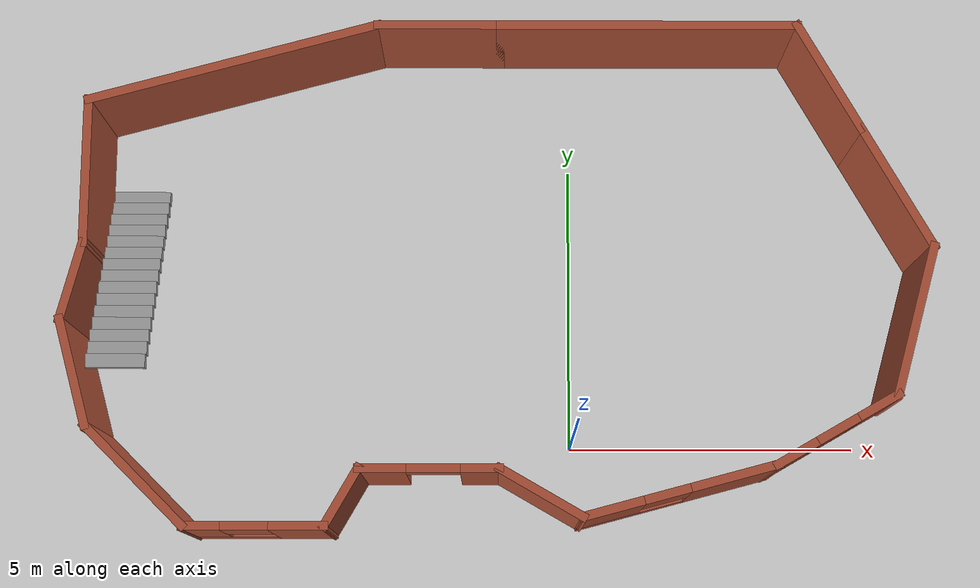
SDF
<sdf version="1.7">
 <world name="default">
  <light name="sun" type="directional">
   <pose>0 0 10 0 -0 0</pose>
   <diffuse>0.8 0.8 0.8 1</diffuse>
   <specular>0.2 0.2 0.2 1</specular>
   <attenuation>
    <range>1000</range>
    <constant>0.9</constant>
    <linear>0.01</linear>
    <quadratic>0.001</quadratic>
   </attenuation>
   <direction>-0.5 0.1 -0.9</direction>
   <spot><inner_angle>0</inner_angle><outer_angle>0</outer_angle><falloff>0</falloff></spot>
  </light>
  <model name="ground_plane">
   <static>1</static>
   <link name="link">
    <collision name="collision">
     <geometry><plane><normal>0 0 1</normal><size>100 100</size></plane></geometry>
     <surface>
      <contact><collide_bitmask>65535</collide_bitmask></contact>
      <friction><ode><mu>100</mu><mu2>50</mu2></ode></friction>
     </surface>
    </collision>
    <visual name="visual">
     <cast_shadows>0</cast_shadows>
     <geometry><plane><normal>0 0 1</normal><size>100 100</size></plane></geometry>
     <material>
      <script><uri>file://media/materials/scripts/gazebo.material</uri><name>Gazebo/Grey</name></script>
     </material>
    </visual>
   </link>
  </model>
  <gravity>0 0 -9.8</gravity>
  <magnetic_field>6e-06 2.3e-05 -4.2e-05</magnetic_field>
  <atmosphere type="adiabatic"/>
  <physics type="ode">
   <max_step_size>0.001</max_step_size>
   <real_time_factor>1</real_time_factor>
   <real_time_update_rate>1000</real_time_update_rate>
  </physics>
  <scene><ambient>0.4 0.4 0.4 1</ambient><background>0.7 0.7 0.7 1</background><shadows>1</shadows></scene>
  <spherical_coordinates>
   <surface_model>EARTH_WGS84</surface_model>
   <latitude_deg>0</latitude_deg>
   <longitude_deg>0</longitude_deg>
   <elevation>0</elevation>
   <heading_deg>0</heading_deg>
  </spherical_coordinates>
  <model name="my_building">
   <pose>-1.25788 2.77957 0 0 -0 0</pose>
   <link name="Stairs_0">
    <visual name="Stairs_0_Visual_0">
     <pose>-6.40227 1.72889 0.083333 0 -0 0</pose>
     <geometry><box><size>1 0.233333 0.166667</size></box></geometry>
     <material>
      <script><uri>file://media/materials/scripts/gazebo.material</uri><name>Gazebo/Grey</name></script>
      <ambient>1 1 1 1</ambient>
     </material>
     <meta><layer>0</layer></meta>
    </visual>
    <collision name="Stairs_0_Collision_0">
     <geometry><box><size>1 0.233333 0.166667</size></box></geometry>
     <pose>-6.40227 1.72889 0.083333 0 -0 0</pose>
    </collision>
    <visual name="Stairs_0_Visual_1">
     <pose>-6.40227 1.49556 0.25 0 -0 0</pose>
     <geometry><box><size>1 0.233333 0.166667</size></box></geometry>
     <material>
      <script><uri>file://media/materials/scripts/gazebo.material</uri><name>Gazebo/Grey</name></script>
      <ambient>1 1 1 1</ambient>
     </material>
     <meta><layer>0</layer></meta>
    </visual>
    <collision name="Stairs_0_Collision_1">
     <geometry><box><size>1 0.233333 0.166667</size></box></geometry>
     <pose>-6.40227 1.49556 0.25 0 -0 0</pose>
    </collision>
    <visual name="Stairs_0_Visual_2">
     <pose>-6.40227 1.26223 0.416667 0 -0 0</pose>
     <geometry><box><size>1 0.233333 0.166667</size></box></geometry>
     <material>
      <script><uri>file://media/materials/scripts/gazebo.material</uri><name>Gazebo/Grey</name></script>
      <ambient>1 1 1 1</ambient>
     </material>
     <meta><layer>0</layer></meta>
    </visual>
    <collision name="Stairs_0_Collision_2">
     <geometry><box><size>1 0.233333 0.166667</size></box></geometry>
     <pose>-6.40227 1.26223 0.416667 0 -0 0</pose>
    </collision>
    <visual name="Stairs_0_Visual_3">
     <pose>-6.40227 1.02889 0.583333 0 -0 0</pose>
     <geometry><box><size>1 0.233333 0.166667</size></box></geometry>
     <material>
      <script><uri>file://media/materials/scripts/gazebo.material</uri><name>Gazebo/Grey</name></script>
      <ambient>1 1 1 1</ambient>
     </material>
     <meta><layer>0</layer></meta>
    </visual>
    <collision name="Stairs_0_Collision_3">
     <geometry><box><size>1 0.233333 0.166667</size></box></geometry>
     <pose>-6.40227 1.02889 0.583333 0 -0 0</pose>
    </collision>
    <visual name="Stairs_0_Visual_4">
     <pose>-6.40227 0.79556 0.75 0 -0 0</pose>
     <geometry><box><size>1 0.233333 0.166667</size></box></geometry>
     <material>
      <script><uri>file://media/materials/scripts/gazebo.material</uri><name>Gazebo/Grey</name></script>
      <ambient>1 1 1 1</ambient>
     </material>
     <meta><layer>0</layer></meta>
    </visual>
    <collision name="Stairs_0_Collision_4">
     <geometry><box><size>1 0.233333 0.166667</size></box></geometry>
     <pose>-6.40227 0.79556 0.75 0 -0 0</pose>
    </collision>
    <visual name="Stairs_0_Visual_5">
     <pose>-6.40227 0.562227 0.916667 0 -0 0</pose>
     <geometry><box><size>1 0.233333 0.166667</size></box></geometry>
     <material>
      <script><uri>file://media/materials/scripts/gazebo.material</uri><name>Gazebo/Grey</name></script>
      <ambient>1 1 1 1</ambient>
     </material>
     <meta><layer>0</layer></meta>
    </visual>
    <collision name="Stairs_0_Collision_5">
     <geometry><box><size>1 0.233333 0.166667</size></box></geometry>
     <pose>-6.40227 0.562227 0.916667 0 -0 0</pose>
    </collision>
    <visual name="Stairs_0_Visual_6">
     <pose>-6.40227 0.328894 1.08333 0 -0 0</pose>
     <geometry><box><size>1 0.233333 0.166667</size></box></geometry>
     <material>
      <script><uri>file://media/materials/scripts/gazebo.material</uri><name>Gazebo/Grey</name></script>
      <ambient>1 1 1 1</ambient>
     </material>
     <meta><layer>0</layer></meta>
    </visual>
    <collision name="Stairs_0_Collision_6">
     <geometry><box><size>1 0.233333 0.166667</size></box></geometry>
     <pose>-6.40227 0.328894 1.08333 0 -0 0</pose>
    </collision>
    <visual name="Stairs_0_Visual_7">
     <pose>-6.40227 0.09556 1.25 0 -0 0</pose>
     <geometry><box><size>1 0.233333 0.166667</size></box></geometry>
     <material>
      <script><uri>file://media/materials/scripts/gazebo.material</uri><name>Gazebo/Grey</name></script>
      <ambient>1 1 1 1</ambient>
     </material>
     <meta><layer>0</layer></meta>
    </visual>
    <collision name="Stairs_0_Collision_7">
     <geometry><box><size>1 0.233333 0.166667</size></box></geometry>
     <pose>-6.40227 0.09556 1.25 0 -0 0</pose>
    </collision>
    <visual name="Stairs_0_Visual_8">
     <pose>-6.40227 -0.137773 1.41667 0 -0 0</pose>
     <geometry><box><size>1 0.233333 0.166667</size></box></geometry>
     <material>
      <script><uri>file://media/materials/scripts/gazebo.material</uri><name>Gazebo/Grey</name></script>
      <ambient>1 1 1 1</ambient>
     </material>
     <meta><layer>0</layer></meta>
    </visual>
    <collision name="Stairs_0_Collision_8">
     <geometry><box><size>1 0.233333 0.166667</size></box></geometry>
     <pose>-6.40227 -0.137773 1.41667 0 -0 0</pose>
    </collision>
    <visual name="Stairs_0_Visual_9">
     <pose>-6.40227 -0.371106 1.58333 0 -0 0</pose>
     <geometry><box><size>1 0.233333 0.166667</size></box></geometry>
     <material>
      <script><uri>file://media/materials/scripts/gazebo.material</uri><name>Gazebo/Grey</name></script>
      <ambient>1 1 1 1</ambient>
     </material>
     <meta><layer>0</layer></meta>
    </visual>
    <collision name="Stairs_0_Collision_9">
     <geometry><box><size>1 0.233333 0.166667</size></box></geometry>
     <pose>-6.40227 -0.371106 1.58333 0 -0 0</pose>
    </collision>
    <visual name="Stairs_0_Visual_10">
     <pose>-6.40227 -0.60444 1.75 0 -0 0</pose>
     <geometry><box><size>1 0.233333 0.166667</size></box></geometry>
     <material>
      <script><uri>file://media/materials/scripts/gazebo.material</uri><name>Gazebo/Grey</name></script>
      <ambient>1 1 1 1</ambient>
     </material>
     <meta><layer>0</layer></meta>
    </visual>
    <collision name="Stairs_0_Collision_10">
     <geometry><box><size>1 0.233333 0.166667</size></box></geometry>
     <pose>-6.40227 -0.60444 1.75 0 -0 0</pose>
    </collision>
    <visual name="Stairs_0_Visual_11">
     <pose>-6.40227 -0.837773 1.91667 0 -0 0</pose>
     <geometry><box><size>1 0.233333 0.166667</size></box></geometry>
     <material>
      <script><uri>file://media/materials/scripts/gazebo.material</uri><name>Gazebo/Grey</name></script>
      <ambient>1 1 1 1</ambient>
     </material>
     <meta><layer>0</layer></meta>
    </visual>
    <collision name="Stairs_0_Collision_11">
     <geometry><box><size>1 0.233333 0.166667</size></box></geometry>
     <pose>-6.40227 -0.837773 1.91667 0 -0 0</pose>
    </collision>
    <visual name="Stairs_0_Visual_12">
     <pose>-6.40227 -1.07111 2.08333 0 -0 0</pose>
     <geometry><box><size>1 0.233333 0.166667</size></box></geometry>
     <material>
      <script><uri>file://media/materials/scripts/gazebo.material</uri><name>Gazebo/Grey</name></script>
      <ambient>1 1 1 1</ambient>
     </material>
     <meta><layer>0</layer></meta>
    </visual>
    <collision name="Stairs_0_Collision_12">
     <geometry><box><size>1 0.233333 0.166667</size></box></geometry>
     <pose>-6.40227 -1.07111 2.08333 0 -0 0</pose>
    </collision>
    <visual name="Stairs_0_Visual_13">
     <pose>-6.40227 -1.30444 2.25 0 -0 0</pose>
     <geometry><box><size>1 0.233333 0.166667</size></box></geometry>
     <material>
      <script><uri>file://media/materials/scripts/gazebo.material</uri><name>Gazebo/Grey</name></script>
      <ambient>1 1 1 1</ambient>
     </material>
     <meta><layer>0</layer></meta>
    </visual>
    <collision name="Stairs_0_Collision_13">
     <geometry><box><size>1 0.233333 0.166667</size></box></geometry>
     <pose>-6.40227 -1.30444 2.25 0 -0 0</pose>
    </collision>
    <visual name="Stairs_0_Visual_14">
     <pose>-6.40227 -1.53777 2.41667 0 -0 0</pose>
     <geometry><box><size>1 0.233333 0.166667</size></box></geometry>
     <material>
      <script><uri>file://media/materials/scripts/gazebo.material</uri><name>Gazebo/Grey</name></script>
      <ambient>1 1 1 1</ambient>
     </material>
     <meta><layer>0</layer></meta>
    </visual>
    <collision name="Stairs_0_Collision_14">
     <geometry><box><size>1 0.233333 0.166667</size></box></geometry>
     <pose>-6.40227 -1.53777 2.41667 0 -0 0</pose>
    </collision>
   </link>
   <link name="Wall_20">
    <collision name="Wall_20_Collision">
     <geometry><box><size>5.25 0.15 2.5</size></box></geometry>
     <pose>0 0 1.25 0 -0 0</pose>
    </collision>
    <visual name="Wall_20_Visual">
     <pose>0 0 1.25 0 -0 0</pose>
     <geometry><box><size>5.25 0.15 2.5</size></box></geometry>
     <material>
      <script><uri>file://media/materials/scripts/gazebo.material</uri><name>Gazebo/Bricks</name></script>
      <ambient>1 1 1 1</ambient>
     </material>
     <meta><layer>0</layer></meta>
    </visual>
    <pose>-4.53336 3.62176 0 0 -0 0.261799</pose>
   </link>
   <link name="Wall_21">
    <collision name="Wall_21_Collision">
     <geometry><box><size>2.25 0.15 2.5</size></box></geometry>
     <pose>0 0 1.25 0 -0 0</pose>
    </collision>
    <visual name="Wall_21_Visual">
     <pose>0 0 1.25 0 -0 0</pose>
     <geometry><box><size>2.25 0.15 2.5</size></box></geometry>
     <material>
      <script><uri>file://media/materials/scripts/gazebo.material</uri><name>Gazebo/Bricks</name></script>
      <ambient>1 1 1 1</ambient>
     </material>
     <meta><layer>0</layer></meta>
    </visual>
    <pose>-1.02025 4.28175 0 0 -0 0</pose>
   </link>
   <link name="Wall_22">
    <collision name="Wall_22_Collision">
     <geometry><box><size>5.25 0.15 2.5</size></box></geometry>
     <pose>0 0 1.25 0 -0 0</pose>
    </collision>
    <visual name="Wall_22_Visual">
     <pose>0 0 1.25 0 -0 0</pose>
     <geometry><box><size>5.25 0.15 2.5</size></box></geometry>
     <material>
      <script><uri>file://media/materials/scripts/gazebo.material</uri><name>Gazebo/Bricks</name></script>
      <ambient>1 1 1 1</ambient>
     </material>
     <meta><layer>0</layer></meta>
    </visual>
    <pose>2.57975 4.28175 0 0 -0 0</pose>
   </link>
   <link name="Wall_23">
    <collision name="Wall_23_Collision">
     <geometry><box><size>2.25 0.15 2.5</size></box></geometry>
     <pose>0 0 1.25 0 -0 0</pose>
    </collision>
    <visual name="Wall_23_Visual">
     <pose>0 0 1.25 0 -0 0</pose>
     <geometry><box><size>2.25 0.15 2.5</size></box></geometry>
     <material>
      <script><uri>file://media/materials/scripts/gazebo.material</uri><name>Gazebo/Bricks</name></script>
      <ambient>1 1 1 1</ambient>
     </material>
     <meta><layer>0</layer></meta>
    </visual>
    <pose>5.65475 3.37243 0 0 -0 -1.0472</pose>
   </link>
   <link name="Wall_24">
    <collision name="Wall_24_Collision">
     <geometry><box><size>2.5 0.15 2.5</size></box></geometry>
     <pose>0 0 1.25 0 -0 0</pose>
    </collision>
    <visual name="Wall_24_Visual">
     <pose>0 0 1.25 0 -0 0</pose>
     <geometry><box><size>2.5 0.15 2.5</size></box></geometry>
     <material>
      <script><uri>file://media/materials/scripts/gazebo.material</uri><name>Gazebo/Bricks</name></script>
      <ambient>1 1 1 1</ambient>
     </material>
     <meta><layer>0</layer></meta>
    </visual>
    <pose>6.76725 1.44552 0 0 -0 -1.0472</pose>
   </link>
   <link name="Wall_25">
    <collision name="Wall_25_Collision">
     <geometry><box><size>2.75 0.15 2.5</size></box></geometry>
     <pose>0 0 1.25 0 -0 0</pose>
    </collision>
    <visual name="Wall_25_Visual">
     <pose>0 0 1.25 0 -0 0</pose>
     <geometry><box><size>2.75 0.15 2.5</size></box></geometry>
     <material>
      <script><uri>file://media/materials/scripts/gazebo.material</uri><name>Gazebo/Bricks</name></script>
      <ambient>1 1 1 1</ambient>
     </material>
     <meta><layer>0</layer></meta>
    </visual>
    <pose>7.01829 -0.827763 0 0 -0 -1.8326</pose>
   </link>
   <link name="Wall_26">
    <pose>5.66424 -2.67097 0 0 -0 -2.61799</pose>
    <visual name="Wall_26_Visual_0">
     <pose>-0.825856 0 1.25 0 -0 0</pose>
     <geometry><box><size>0.848288 0.15 2.5</size></box></geometry>
     <material>
      <script><uri>file://media/materials/scripts/gazebo.material</uri><name>Gazebo/Bricks</name></script>
      <ambient>1 1 1 1</ambient>
     </material>
     <meta><layer>0</layer></meta>
    </visual>
    <collision name="Wall_26_Collision_0">
     <geometry><box><size>0.848288 0.15 2.5</size></box></geometry>
     <pose>-0.825856 0 1.25 0 -0 0</pose>
    </collision>
    <visual name="Wall_26_Visual_1">
     <pose>0.424144 0 0.25 0 -0 0</pose>
     <geometry><box><size>1.65171 0.15 0.5</size></box></geometry>
     <material>
      <script><uri>file://media/materials/scripts/gazebo.material</uri><name>Gazebo/Bricks</name></script>
      <ambient>1 1 1 1</ambient>
     </material>
     <meta><layer>0</layer></meta>
    </visual>
    <collision name="Wall_26_Collision_1">
     <geometry><box><size>1.65171 0.15 0.5</size></box></geometry>
     <pose>0.424144 0 0.25 0 -0 0</pose>
    </collision>
    <visual name="Wall_26_Visual_2">
     <pose>0.824144 0 1.5 0 -0 0</pose>
     <geometry><box><size>0.851712 0.15 2</size></box></geometry>
     <material>
      <script><uri>file://media/materials/scripts/gazebo.material</uri><name>Gazebo/Bricks</name></script>
      <ambient>1 1 1 1</ambient>
     </material>
     <meta><layer>0</layer></meta>
    </visual>
    <collision name="Wall_26_Collision_2">
     <geometry><box><size>0.851712 0.15 2</size></box></geometry>
     <pose>0.824144 0 1.5 0 -0 0</pose>
    </collision>
    <visual name="Wall_26_Visual_3">
     <pose>-0.001712 0 1.9 0 -0 0</pose>
     <geometry><box><size>0.8 0.15 1.2</size></box></geometry>
     <material>
      <script><uri>file://media/materials/scripts/gazebo.material</uri><name>Gazebo/Bricks</name></script>
      <ambient>1 1 1 1</ambient>
     </material>
     <meta><layer>0</layer></meta>
    </visual>
    <collision name="Wall_26_Collision_3">
     <geometry><box><size>0.8 0.15 1.2</size></box></geometry>
     <pose>-0.001712 0 1.9 0 -0 0</pose>
    </collision>
   </link>
   <link name="Wall_27">
    <pose>3.02874 -3.69199 0 0 -0 -2.87979</pose>
    <visual name="Wall_27_Visual_0">
     <pose>-0.964565 0 1.25 0 -0 0</pose>
     <geometry><box><size>1.57087 0.15 2.5</size></box></geometry>
     <material>
      <script><uri>file://media/materials/scripts/gazebo.material</uri><name>Gazebo/Bricks</name></script>
      <ambient>1 1 1 1</ambient>
     </material>
     <meta><layer>0</layer></meta>
    </visual>
    <collision name="Wall_27_Collision_0">
     <geometry><box><size>1.57087 0.15 2.5</size></box></geometry>
     <pose>-0.964565 0 1.25 0 -0 0</pose>
    </collision>
    <visual name="Wall_27_Visual_1">
     <pose>0.785435 0 0.25 0 -0 0</pose>
     <geometry><box><size>1.92913 0.15 0.5</size></box></geometry>
     <material>
      <script><uri>file://media/materials/scripts/gazebo.material</uri><name>Gazebo/Bricks</name></script>
      <ambient>1 1 1 1</ambient>
     </material>
     <meta><layer>0</layer></meta>
    </visual>
    <collision name="Wall_27_Collision_1">
     <geometry><box><size>1.92913 0.15 0.5</size></box></geometry>
     <pose>0.785435 0 0.25 0 -0 0</pose>
    </collision>
    <visual name="Wall_27_Visual_2">
     <pose>1.18544 0 1.5 0 -0 0</pose>
     <geometry><box><size>1.12913 0.15 2</size></box></geometry>
     <material>
      <script><uri>file://media/materials/scripts/gazebo.material</uri><name>Gazebo/Bricks</name></script>
      <ambient>1 1 1 1</ambient>
     </material>
     <meta><layer>0</layer></meta>
    </visual>
    <collision name="Wall_27_Collision_2">
     <geometry><box><size>1.12913 0.15 2</size></box></geometry>
     <pose>1.18544 0 1.5 0 -0 0</pose>
    </collision>
    <visual name="Wall_27_Visual_3">
     <pose>0.22087 0 1.9 0 -0 0</pose>
     <geometry><box><size>0.8 0.15 1.2</size></box></geometry>
     <material>
      <script><uri>file://media/materials/scripts/gazebo.material</uri><name>Gazebo/Bricks</name></script>
      <ambient>1 1 1 1</ambient>
     </material>
     <meta><layer>0</layer></meta>
    </visual>
    <collision name="Wall_27_Collision_3">
     <geometry><box><size>0.8 0.15 1.2</size></box></geometry>
     <pose>0.22087 0 1.9 0 -0 0</pose>
    </collision>
   </link>
   <link name="Wall_28">
    <collision name="Wall_28_Collision">
     <geometry><box><size>1.75 0.15 2.5</size></box></geometry>
     <pose>0 0 1.25 0 -0 0</pose>
    </collision>
    <visual name="Wall_28_Visual">
     <pose>0 0 1.25 0 -0 0</pose>
     <geometry><box><size>1.75 0.15 2.5</size></box></geometry>
     <material>
      <script><uri>file://media/materials/scripts/gazebo.material</uri><name>Gazebo/Bricks</name></script>
      <ambient>1 1 1 1</ambient>
     </material>
     <meta><layer>0</layer></meta>
    </visual>
    <pose>0.71799 -3.72551 0 0 -0 2.61799</pose>
   </link>
   <link name="Wall_29">
    <pose>-1.14983 -3.32551 0 0 -0 3.14159</pose>
    <visual name="Wall_29_Visual_0">
     <pose>-0.885131 0 1.25 0 -0 0</pose>
     <geometry><box><size>0.729739 0.15 2.5</size></box></geometry>
     <material>
      <script><uri>file://media/materials/scripts/gazebo.material</uri><name>Gazebo/Bricks</name></script>
      <ambient>1 1 1 1</ambient>
     </material>
     <meta><layer>0</layer></meta>
    </visual>
    <collision name="Wall_29_Collision_0">
     <geometry><box><size>0.729739 0.15 2.5</size></box></geometry>
     <pose>-0.885131 0 1.25 0 -0 0</pose>
    </collision>
    <visual name="Wall_29_Visual_1">
     <pose>0.814869 0 1.25 0 -0 0</pose>
     <geometry><box><size>0.870261 0.15 2.5</size></box></geometry>
     <material>
      <script><uri>file://media/materials/scripts/gazebo.material</uri><name>Gazebo/Bricks</name></script>
      <ambient>1 1 1 1</ambient>
     </material>
     <meta><layer>0</layer></meta>
    </visual>
    <collision name="Wall_29_Collision_1">
     <geometry><box><size>0.870261 0.15 2.5</size></box></geometry>
     <pose>0.814869 0 1.25 0 -0 0</pose>
    </collision>
    <visual name="Wall_29_Visual_2">
     <pose>-0.070261 0 2.25 0 -0 0</pose>
     <geometry><box><size>0.9 0.15 0.5</size></box></geometry>
     <material>
      <script><uri>file://media/materials/scripts/gazebo.material</uri><name>Gazebo/Bricks</name></script>
      <ambient>1 1 1 1</ambient>
     </material>
     <meta><layer>0</layer></meta>
    </visual>
    <collision name="Wall_29_Collision_2">
     <geometry><box><size>0.9 0.15 0.5</size></box></geometry>
     <pose>-0.070261 0 2.25 0 -0 0</pose>
    </collision>
   </link>
   <link name="Wall_30">
    <collision name="Wall_30_Collision">
     <geometry><box><size>1.25 0.15 2.5</size></box></geometry>
     <pose>0 0 1.25 0 -0 0</pose>
    </collision>
    <visual name="Wall_30_Visual">
     <pose>0 0 1.25 0 -0 0</pose>
     <geometry><box><size>1.25 0.15 2.5</size></box></geometry>
     <material>
      <script><uri>file://media/materials/scripts/gazebo.material</uri><name>Gazebo/Bricks</name></script>
      <ambient>1 1 1 1</ambient>
     </material>
     <meta><layer>0</layer></meta>
    </visual>
    <pose>-2.59983 -3.80183 0 0 -0 -2.0944</pose>
   </link>
   <link name="Wall_31">
    <pose>-4.04983 -4.27814 0 0 -0 3.14159</pose>
    <visual name="Wall_31_Visual_0">
     <pose>-0.750029 0 1.25 0 -0 0</pose>
     <geometry><box><size>0.999942 0.15 2.5</size></box></geometry>
     <material>
      <script><uri>file://media/materials/scripts/gazebo.material</uri><name>Gazebo/Bricks</name></script>
      <ambient>1 1 1 1</ambient>
     </material>
     <meta><layer>0</layer></meta>
    </visual>
    <collision name="Wall_31_Collision_0">
     <geometry><box><size>0.999942 0.15 2.5</size></box></geometry>
     <pose>-0.750029 0 1.25 0 -0 0</pose>
    </collision>
    <visual name="Wall_31_Visual_1">
     <pose>0.499971 0 0.25 0 -0 0</pose>
     <geometry><box><size>1.50006 0.15 0.5</size></box></geometry>
     <material>
      <script><uri>file://media/materials/scripts/gazebo.material</uri><name>Gazebo/Bricks</name></script>
      <ambient>1 1 1 1</ambient>
     </material>
     <meta><layer>0</layer></meta>
    </visual>
    <collision name="Wall_31_Collision_1">
     <geometry><box><size>1.50006 0.15 0.5</size></box></geometry>
     <pose>0.499971 0 0.25 0 -0 0</pose>
    </collision>
    <visual name="Wall_31_Visual_2">
     <pose>0.899971 0 1.5 0 -0 0</pose>
     <geometry><box><size>0.700058 0.15 2</size></box></geometry>
     <material>
      <script><uri>file://media/materials/scripts/gazebo.material</uri><name>Gazebo/Bricks</name></script>
      <ambient>1 1 1 1</ambient>
     </material>
     <meta><layer>0</layer></meta>
    </visual>
    <collision name="Wall_31_Collision_2">
     <geometry><box><size>0.700058 0.15 2</size></box></geometry>
     <pose>0.899971 0 1.5 0 -0 0</pose>
    </collision>
    <visual name="Wall_31_Visual_3">
     <pose>0.149942 0 1.9 0 -0 0</pose>
     <geometry><box><size>0.8 0.15 1.2</size></box></geometry>
     <material>
      <script><uri>file://media/materials/scripts/gazebo.material</uri><name>Gazebo/Bricks</name></script>
      <ambient>1 1 1 1</ambient>
     </material>
     <meta><layer>0</layer></meta>
    </visual>
    <collision name="Wall_31_Collision_3">
     <geometry><box><size>0.8 0.15 1.2</size></box></geometry>
     <pose>0.149942 0 1.9 0 -0 0</pose>
    </collision>
   </link>
   <link name="Wall_32">
    <collision name="Wall_32_Collision">
     <geometry><box><size>2.5 0.15 2.5</size></box></geometry>
     <pose>0 0 1.25 0 -0 0</pose>
    </collision>
    <visual name="Wall_32_Visual">
     <pose>0 0 1.25 0 -0 0</pose>
     <geometry><box><size>2.5 0.15 2.5</size></box></geometry>
     <material>
      <script><uri>file://media/materials/scripts/gazebo.material</uri><name>Gazebo/Bricks</name></script>
      <ambient>1 1 1 1</ambient>
     </material>
     <meta><layer>0</layer></meta>
    </visual>
    <pose>-6.05568 -3.44729 0 0 -0 2.35619</pose>
   </link>
   <link name="Wall_33">
    <collision name="Wall_33_Collision">
     <geometry><box><size>2 0.15 2.5</size></box></geometry>
     <pose>0 0 1.25 0 -0 0</pose>
    </collision>
    <visual name="Wall_33_Visual">
     <pose>0 0 1.25 0 -0 0</pose>
     <geometry><box><size>2 0.15 2.5</size></box></geometry>
     <material>
      <script><uri>file://media/materials/scripts/gazebo.material</uri><name>Gazebo/Bricks</name></script>
      <ambient>1 1 1 1</ambient>
     </material>
     <meta><layer>0</layer></meta>
    </visual>
    <pose>-7.12594 -1.72296 0 0 -0 1.8326</pose>
   </link>
   <link name="Wall_34">
    <collision name="Wall_34_Collision">
     <geometry><box><size>1.5 0.15 2.5</size></box></geometry>
     <pose>0 0 1.25 0 -0 0</pose>
    </collision>
    <visual name="Wall_34_Visual">
     <pose>0 0 1.25 0 -0 0</pose>
     <geometry><box><size>1.5 0.15 2.5</size></box></geometry>
     <material>
      <script><uri>file://media/materials/scripts/gazebo.material</uri><name>Gazebo/Bricks</name></script>
      <ambient>1 1 1 1</ambient>
     </material>
     <meta><layer>0</layer></meta>
    </visual>
    <pose>-7.19064 -0.177475 0 0 -0 1.309</pose>
   </link>
   <link name="Wall_35">
    <collision name="Wall_35_Collision">
     <geometry><box><size>2.63733 0.15 2.5</size></box></geometry>
     <pose>0 0 1.25 0 -0 0</pose>
    </collision>
    <visual name="Wall_35_Visual">
     <pose>0 0 1.25 0 -0 0</pose>
     <geometry><box><size>2.63733 0.15 2.5</size></box></geometry>
     <material>
      <script><uri>file://media/materials/scripts/gazebo.material</uri><name>Gazebo/Bricks</name></script>
      <ambient>1 1 1 1</ambient>
     </material>
     <meta><layer>0</layer></meta>
    </visual>
    <pose>-7.00621 1.71815 0 0 -0 1.56297</pose>
   </link>
   <static>1</static>
  </model>
 </world>
</sdf>
